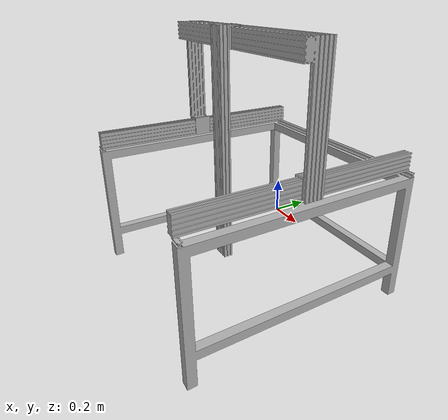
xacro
<?xml version="1.0" ?>
<robot name="robot_description" xmlns:xacro="http://www.ros.org/wiki/xacro">

<xacro:include filename="$(find robot_description)/urdf/materials.xacro" />
<xacro:include filename="$(find robot_description)/urdf/robot_description.ros2control" />
<xacro:include filename="$(find robot_description)/urdf/robot_description.gazebo" />

<link name="world"/>

<joint name="world_fixed" type="fixed">
  <origin xyz="0 0 0" rpy="0 0 0"/>
  <parent link="world"/>
  <child link="base_link"/>
</joint>

<link name="base_link">
  <inertial>
    <origin xyz="0.45768622613563736 -0.4368264195359295 0.4295018217497949" rpy="0 0 0"/>
    <mass value="145.80079322670187"/>
    <inertia ixx="27.178522" iyy="35.333395" izz="48.362655" ixy="-0.011589" iyz="0.792709" ixz="-0.004434"/>
  </inertial>
  <visual>
    <origin xyz="0 0 0" rpy="0 0 0"/>
    <geometry>
      <mesh filename="file://$(find robot_description)/meshes/base_link.stl" scale="0.001 0.001 0.001"/>
    </geometry>
    <material name="silver"/>
  </visual>
  <collision>
    <origin xyz="0 0 0" rpy="0 0 0"/>
    <geometry>
      <mesh filename="file://$(find robot_description)/meshes/base_link.stl" scale="0.001 0.001 0.001"/>
    </geometry>
  </collision>
</link>

<link name="x_link_1">
  <inertial>
    <origin xyz="0.4289999999999972 -0.07702054233668748 0.43855797782578687" rpy="0 0 0"/>
    <mass value="33.63690371299227"/>
    <inertia ixx="0.818102" iyy="5.092965" izz="4.355089" ixy="-1e-06" iyz="0.097841" ixz="0.0"/>
  </inertial>
  <visual>
    <origin xyz="-0.0285 -0.0 -0.603" rpy="0 0 0"/>
    <geometry>
      <mesh filename="file://$(find robot_description)/meshes/x_link_1.stl" scale="0.001 0.001 0.001"/>
    </geometry>
    <material name="silver"/>
  </visual>
  <collision>
    <origin xyz="-0.0285 -0.0 -0.603" rpy="0 0 0"/>
    <geometry>
      <mesh filename="file://$(find robot_description)/meshes/x_link_1.stl" scale="0.001 0.001 0.001"/>
    </geometry>
  </collision>
</link>

<link name="y_link_1">
  <inertial>
    <origin xyz="0.04001368587856731 0.02000000000000067 0.04667235883224685" rpy="0 0 0"/>
    <mass value="0.29493075116533896"/>
    <inertia ixx="0.000339" iyy="0.000375" izz="0.000295" ixy="0.0" iyz="0.0" ixz="-0.0"/>
  </inertial>
  <visual>
    <origin xyz="0.034 0.12 -1.081" rpy="0 0 0"/>
    <geometry>
      <mesh filename="file://$(find robot_description)/meshes/y_link_1.stl" scale="0.001 0.001 0.001"/>
    </geometry>
    <material name="silver"/>
  </visual>
  <collision>
    <origin xyz="0.034 0.12 -1.081" rpy="0 0 0"/>
    <geometry>
      <mesh filename="file://$(find robot_description)/meshes/y_link_1.stl" scale="0.001 0.001 0.001"/>
    </geometry>
  </collision>
</link>

<link name="z_link_1">
  <inertial>
    <origin xyz="-0.040129346895664705 -0.02023568543439727 -0.5125000000000038" rpy="0 0 0"/>
    <mass value="22.428174832479133"/>
    <inertia ixx="1.966316" iyy="1.974575" izz="0.013623" ixy="-5e-05" iyz="0.0" ixz="-0.0"/>
  </inertial>
  <visual>
    <origin xyz="-0.046 0.1225 -1.171" rpy="0 0 0"/>
    <geometry>
      <mesh filename="file://$(find robot_description)/meshes/z_link_1.stl" scale="0.001 0.001 0.001"/>
    </geometry>
    <material name="silver"/>
  </visual>
  <collision>
    <origin xyz="-0.046 0.1225 -1.171" rpy="0 0 0"/>
    <geometry>
      <mesh filename="file://$(find robot_description)/meshes/z_link_1.stl" scale="0.001 0.001 0.001"/>
    </geometry>
  </collision>
</link>

<joint name="x_joint" type="prismatic">
  <origin xyz="0.0285 0.0 0.603" rpy="0 0 0"/>
  <parent link="base_link"/>
  <child link="x_link_1"/>
  <axis xyz="0.0 -1.0 0.0"/>
  <limit upper="0.94" lower="0.02" effort="10000" velocity="1000"/>
</joint>

<joint name="y_joint" type="prismatic">
  <origin xyz="-0.0625 -0.12 0.478" rpy="0 0 0"/>
  <parent link="x_link_1"/>
  <child link="y_link_1"/>
  <axis xyz="1.0 -0.0 -0.0"/>
  <limit upper="0.838" lower="0.065" effort="10000" velocity="1000"/>
</joint>

<joint name="z_joint" type="prismatic">
  <origin xyz="0.08 -0.0025 0.09" rpy="0 0 0"/>
  <parent link="y_link_1"/>
  <child link="z_link_1"/>
  <axis xyz="0.0 -0.0 1.0"/>
  <limit upper="0.93" lower="0.0" effort="10000" velocity="1000"/>
</joint>

</robot>

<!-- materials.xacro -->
<robot name="robot" xmlns:xacro="http://www.ros.org/wiki/xacro" >

<material name="silver">
  <color rgba="0.700 0.700 0.700 1.000"/>
</material>

</robot>

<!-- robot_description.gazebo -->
<robot name="robot_description" xmlns:xacro="http://www.ros.org/wiki/xacro" >

<xacro:property name="body_color" value="Gazebo/Silver" />

<gazebo reference="base_link">
  <material>${body_color}</material>
  <mu1>0.2</mu1>
  <mu2>0.2</mu2>
  <self_collide>false</self_collide>
  <gravity>false</gravity>
</gazebo>

<gazebo reference="x_link_1">
  <material>${body_color}</material>
  <mu1>0.2</mu1>
  <mu2>0.2</mu2>
  <self_collide>false</self_collide>
  <gravity>false</gravity>
</gazebo>

<gazebo reference="y_link_1">
  <material>${body_color}</material>
  <mu1>0.2</mu1>
  <mu2>0.2</mu2>
  <self_collide>false</self_collide>
  <gravity>false</gravity>
</gazebo>

<gazebo reference="z_link_1">
  <material>${body_color}</material>
  <mu1>0.2</mu1>
  <mu2>0.2</mu2>
  <self_collide>false</self_collide>
  <gravity>false</gravity>
</gazebo>

<gazebo>
  <!-- x_joint: lower=0.02, upper=0.94 → centro = 0.48 -->
  <plugin filename="gz-sim-joint-position-controller-system" name="gz::sim::systems::JointPositionController">
    <joint_name>x_joint</joint_name>
    <p_gain>10000.0</p_gain>
    <i_gain>0.0</i_gain>
    <d_gain>500.0</d_gain>
    <cmd_max>10000</cmd_max>
    <cmd_min>-10000</cmd_min>
    <initial_position>0.48</initial_position>
  </plugin>
  <!-- y_joint: lower=0.065, upper=0.838 → centro = 0.4515 -->
  <plugin filename="gz-sim-joint-position-controller-system" name="gz::sim::systems::JointPositionController">
    <joint_name>y_joint</joint_name>
    <p_gain>10000.0</p_gain>
    <i_gain>0.0</i_gain>
    <d_gain>500.0</d_gain>
    <cmd_max>10000</cmd_max>
    <cmd_min>-10000</cmd_min>
    <initial_position>0.4515</initial_position>
  </plugin>
  <!-- z_joint: lower=0.0, upper=0.93 → centro = 0.465 -->
  <plugin filename="gz-sim-joint-position-controller-system" name="gz::sim::systems::JointPositionController">
    <joint_name>z_joint</joint_name>
    <p_gain>10000.0</p_gain>
    <i_gain>0.0</i_gain>
    <d_gain>500.0</d_gain>
    <cmd_max>10000</cmd_max>
    <cmd_min>-10000</cmd_min>
    <initial_position>0.465</initial_position>
  </plugin>
</gazebo>

</robot>
